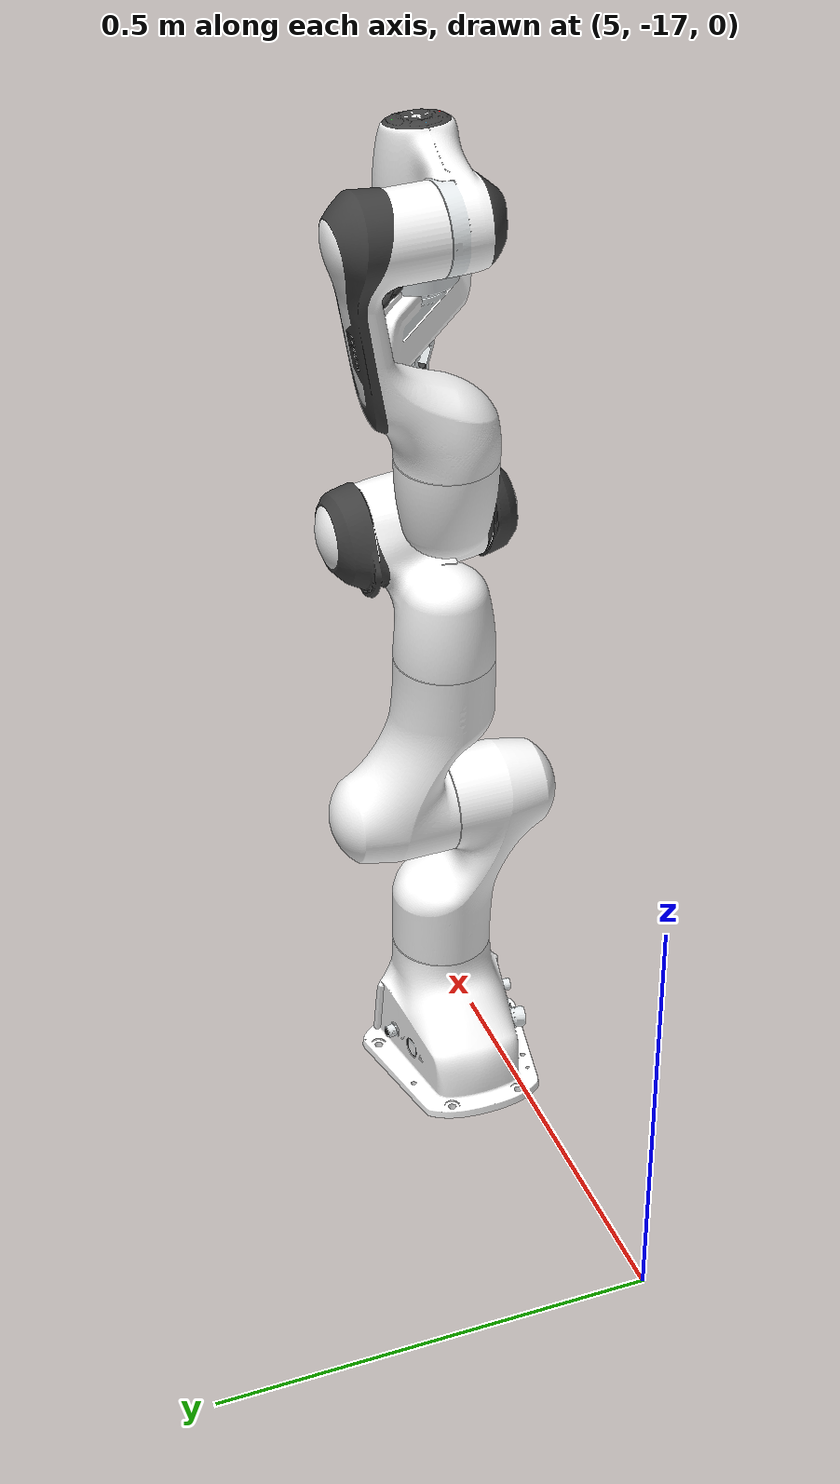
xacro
<?xml version="1.0"?>
<robot xmlns:xacro="http://www.ros.org/wiki/xacro" name="panda">

    <xacro:property name="mesh_pkg" value="package://moveit_resources_panda_description/meshes"/>

    <xacro:macro name="panda_inertial" params="mass inertia">
        <inertial>
            <origin xyz="0 0 0" rpy="0 0 0"/>
            <mass value="${mass}"/>
            <inertia ixx="${inertia}" ixy="0" ixz="0" iyy="${inertia}" iyz="0" izz="${inertia}"/>
        </inertial>
    </xacro:macro>

    <link name="world"/>
    <joint name="panda_world_joint" type="fixed">
        <parent link="world"/>
        <child link="panda_link0"/>
        <origin xyz="5.36 -16.9 0.11" rpy="0 0 0"/>
    </joint>

    <link name="panda_link0">
        <visual><geometry><mesh filename="${mesh_pkg}/visual/link0.dae"/></geometry></visual>
        <collision><geometry><mesh filename="${mesh_pkg}/collision/link0.stl"/></geometry></collision>
        <xacro:panda_inertial mass="2.81" inertia="0.1"/>
    </link>

    <link name="panda_link1">
        <visual><geometry><mesh filename="${mesh_pkg}/visual/link1.dae"/></geometry></visual>
        <collision><geometry><mesh filename="${mesh_pkg}/collision/link1.stl"/></geometry></collision>
        <xacro:panda_inertial mass="2.7" inertia="0.05"/>
    </link>
    <joint name="panda_joint1" type="revolute">
        <origin rpy="0 0 0" xyz="0 0 0.333"/>
        <parent link="panda_link0"/><child link="panda_link1"/>
        <axis xyz="0 0 1"/>
        <limit effort="87" lower="-2.9671" upper="2.9671" velocity="2.3925"/>
        <dynamics damping="10.0" friction="1.0"/>
    </joint>

    <link name="panda_link2">
        <visual><geometry><mesh filename="${mesh_pkg}/visual/link2.dae"/></geometry></visual>
        <collision><geometry><mesh filename="${mesh_pkg}/collision/link2.stl"/></geometry></collision>
        <xacro:panda_inertial mass="2.73" inertia="0.05"/>
    </link>
    <joint name="panda_joint2" type="revolute">
        <origin rpy="-1.57079632679 0 0" xyz="0 0 0"/>
        <parent link="panda_link1"/><child link="panda_link2"/>
        <axis xyz="0 0 1"/>
        <limit effort="87" lower="-1.8326" upper="1.8326" velocity="2.3925"/>
        <dynamics damping="10.0" friction="1.0"/>
    </joint>

    <link name="panda_link3">
        <visual><geometry><mesh filename="${mesh_pkg}/visual/link3.dae"/></geometry></visual>
        <collision><geometry><mesh filename="${mesh_pkg}/collision/link3.stl"/></geometry></collision>
        <xacro:panda_inertial mass="2.04" inertia="0.04"/>
    </link>
    <joint name="panda_joint3" type="revolute">
        <origin rpy="1.57079632679 0 0" xyz="0 -0.316 0"/>
        <parent link="panda_link2"/><child link="panda_link3"/>
        <axis xyz="0 0 1"/>
        <limit effort="87" lower="-2.9671" upper="2.9671" velocity="2.3925"/>
        <dynamics damping="10.0" friction="1.0"/>
    </joint>

    <link name="panda_link4">
        <visual><geometry><mesh filename="${mesh_pkg}/visual/link4.dae"/></geometry></visual>
        <collision><geometry><mesh filename="${mesh_pkg}/collision/link4.stl"/></geometry></collision>
        <xacro:panda_inertial mass="2.08" inertia="0.04"/>
    </link>
    <joint name="panda_joint4" type="revolute">
        <origin rpy="1.57079632679 0 0" xyz="0.0825 0 0"/>
        <parent link="panda_link3"/><child link="panda_link4"/>
        <axis xyz="0 0 1"/>
        <limit effort="87" lower="-3.1416" upper="0.0873" velocity="2.3925"/>
        <dynamics damping="10.0" friction="1.0"/>
    </joint>

    <link name="panda_link5">
        <visual><geometry><mesh filename="${mesh_pkg}/visual/link5.dae"/></geometry></visual>
        <collision><geometry><mesh filename="${mesh_pkg}/collision/link5.stl"/></geometry></collision>
        <xacro:panda_inertial mass="3.0" inertia="0.05"/>
    </link>
    <joint name="panda_joint5" type="revolute">
        <origin rpy="-1.57079632679 0 0" xyz="-0.0825 0.384 0"/>
        <parent link="panda_link4"/><child link="panda_link5"/>
        <axis xyz="0 0 1"/>
        <limit effort="12" lower="-2.9671" upper="2.9671" velocity="2.8710"/>
        <dynamics damping="10.0" friction="1.0"/>
    </joint>

    <link name="panda_link6">
        <visual><geometry><mesh filename="${mesh_pkg}/visual/link6.dae"/></geometry></visual>
        <collision><geometry><mesh filename="${mesh_pkg}/collision/link6.stl"/></geometry></collision>
        <xacro:panda_inertial mass="1.3" inertia="0.02"/>
    </link>
    <joint name="panda_joint6" type="revolute">
        <origin rpy="1.57079632679 0 0" xyz="0 0 0"/>
        <parent link="panda_link5"/><child link="panda_link6"/>
        <axis xyz="0 0 1"/>
        <limit effort="12" lower="-0.0873" upper="3.8223" velocity="2.8710"/>
        <dynamics damping="10.0" friction="1.0"/>
    </joint>

    <link name="panda_link7">
        <visual><geometry><mesh filename="${mesh_pkg}/visual/link7.dae"/></geometry></visual>
        <collision><geometry><mesh filename="${mesh_pkg}/collision/link7.stl"/></geometry></collision>
        <xacro:panda_inertial mass="0.4" inertia="0.01"/>
    </link>
    <joint name="panda_joint7" type="revolute">
        <origin rpy="1.57079632679 0 0" xyz="0.088 0 0"/>
        <parent link="panda_link6"/><child link="panda_link7"/>
        <axis xyz="0 0 1"/>
        <limit effort="12" lower="-2.9671" upper="2.9671" velocity="2.8710"/>
        <dynamics damping="10.0" friction="1.0"/>
    </joint>

    <link name="panda_link8">
        <xacro:panda_inertial mass="0.05" inertia="0.001"/>
    </link>
    <joint name="panda_joint8" type="fixed">
        <origin rpy="0 0 0" xyz="0 0 0.107"/>
        <parent link="panda_link7"/><child link="panda_link8"/>
    </joint>

    <joint name="panda_hand_joint" type="fixed">
        <parent link="panda_link8"/><child link="panda_hand"/>
        <origin rpy="0 0 -0.785398163397" xyz="0 0 0"/>
    </joint>
    <link name="panda_hand">
        <visual><geometry><mesh filename="${mesh_pkg}/visual/hand.dae"/></geometry></visual>
        <collision><geometry><mesh filename="${mesh_pkg}/collision/hand.stl"/></geometry></collision>
        <xacro:panda_inertial mass="0.73" inertia="0.02"/>
    </link>

    <link name="panda_leftfinger">
        <visual><geometry><mesh filename="${mesh_pkg}/visual/finger.dae"/></geometry></visual>
        <collision><geometry><mesh filename="${mesh_pkg}/collision/finger.stl"/></geometry></collision>
        <xacro:panda_inertial mass="0.015" inertia="0.0001"/>
    </link>
    <link name="panda_rightfinger">
        <visual>
            <origin rpy="0 0 3.14159265359" xyz="0 0 0"/>
            <geometry><mesh filename="${mesh_pkg}/visual/finger.dae"/></geometry>
        </visual>
        <collision>
            <origin rpy="0 0 3.14159265359" xyz="0 0 0"/>
            <geometry><mesh filename="${mesh_pkg}/collision/finger.stl"/></geometry>
        </collision>
        <xacro:panda_inertial mass="0.015" inertia="0.0001"/>
    </link>
    <joint name="panda_finger_joint1" type="prismatic">
        <parent link="panda_hand"/><child link="panda_leftfinger"/>
        <origin rpy="0 0 0" xyz="0 0 0.0584"/>
        <axis xyz="0 1 0"/>
        <limit effort="20" lower="0.0" upper="0.04" velocity="0.2"/>
        <dynamics damping="10.0" friction="0.0"/>
    </joint>
    <joint name="panda_finger_joint2" type="prismatic">
        <parent link="panda_hand"/><child link="panda_rightfinger"/>
        <origin rpy="0 0 0" xyz="0 0 0.0584"/>
        <axis xyz="0 -1 0"/>
        <limit effort="20" lower="0.0" upper="0.04" velocity="0.2"/>
        <mimic joint="panda_finger_joint1"/>
        <dynamics damping="10.0" friction="0.0"/>
    </joint>

    <ros2_control name="PandaGazeboSystem" type="system">
        <hardware>
            <plugin>gz_ros2_control/GazeboSimSystem</plugin>
        </hardware>
        <xacro:macro name="arm_joint_ctrl" params="jname init">
            <joint name="${jname}">
                <command_interface name="position"/>
                <state_interface name="position"><param name="initial_value">${init}</param></state_interface>
                <state_interface name="velocity"/>
                <state_interface name="effort"/>
            </joint>
        </xacro:macro>
        <xacro:arm_joint_ctrl jname="panda_joint1" init="0.0"/>
        <xacro:arm_joint_ctrl jname="panda_joint2" init="-0.785"/>
        <xacro:arm_joint_ctrl jname="panda_joint3" init="0.0"/>
        <xacro:arm_joint_ctrl jname="panda_joint4" init="-2.356"/>
        <xacro:arm_joint_ctrl jname="panda_joint5" init="0.0"/>
        <xacro:arm_joint_ctrl jname="panda_joint6" init="1.571"/>
        <xacro:arm_joint_ctrl jname="panda_joint7" init="0.785"/>

        <joint name="panda_finger_joint1">
            <command_interface name="position"/>
            <state_interface name="position"><param name="initial_value">0.0</param></state_interface>
            <state_interface name="velocity"/>
            <state_interface name="effort"/>
        </joint>
        <joint name="panda_finger_joint2">
            <param name="mimic">panda_finger_joint1</param>
            <param name="multiplier">1</param>
            <command_interface name="position"/>
            <state_interface name="position"><param name="initial_value">0.0</param></state_interface>
            <state_interface name="velocity"/>
            <state_interface name="effort"/>
        </joint>
    </ros2_control>

    <gazebo>
        <plugin filename="libgz_ros2_control-system.so" name="gz_ros2_control::GazeboSimROS2ControlPlugin">
            <parameters>$(find my_factory)/config/panda_controllers.yaml</parameters>
            <robot_param_node>/panda/robot_state_publisher</robot_param_node>
            <controller_manager_node_name>/controller_manager</controller_manager_node_name>
            <ros>
                <remapping>/joint_states:=/panda/joint_states</remapping>
            </ros>
        </plugin>
    </gazebo>

    <!-- 🟢 استدعاء ملف كاميرا الذراع السقفية -->
    <xacro:include filename="arm_camera.xacro"/>

</robot>
